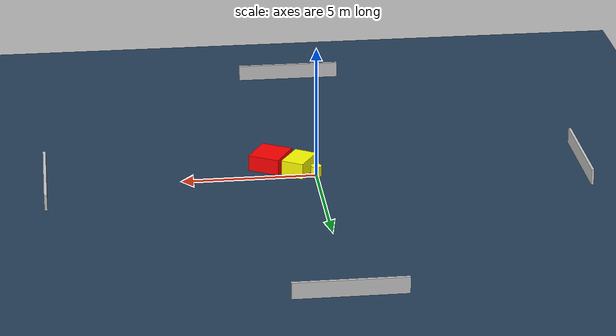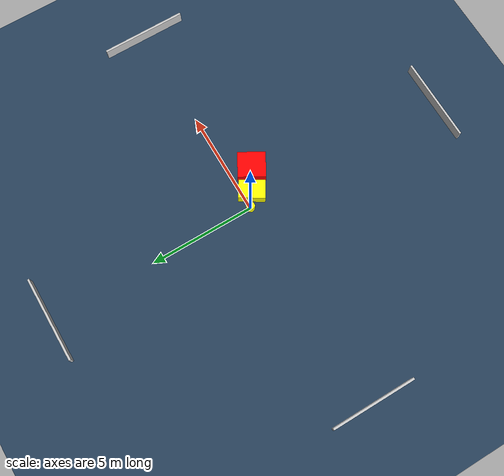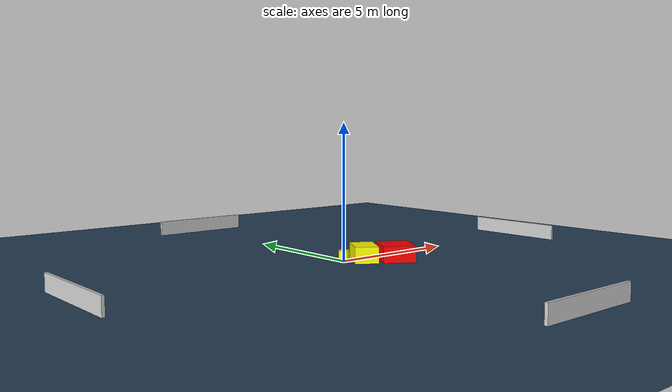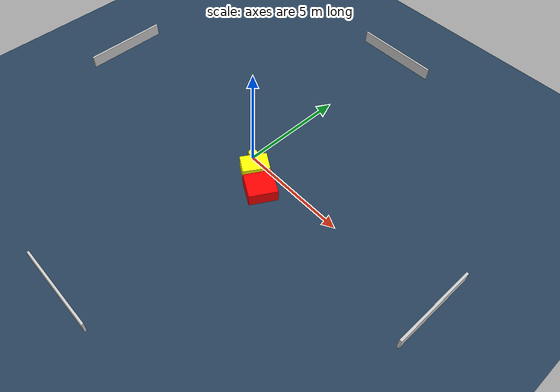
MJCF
<?xml version="1.0" ?>
<mujoco model="generated_environment">
  <option timestep="0.01" integrator="RK4" cone="elliptic"/>
  <default>
    <geom density="1"/>
  </default>
  <asset>
    <texture builtin="gradient" height="3072" name="skybox" rgb1="0.3 0.5 0.7" rgb2="0 0 0" type="skybox" width="512"/>
    <texture builtin="checker" height="300" name="groundplane" rgb1="0.2 0.3 0.4" rgb2="0.1 0.2 0.3" type="2d" width="300"/>
    <material name="groundplane" reflectance="0.2" texrepeat="5 5" texture="groundplane"/>
  </asset>
  <worldbody>
    <light dir="0 0 -1" directional="true" pos="0 0 1.5"/>
    <geom condim="3" friction="0.5 0.005 0.001" material="groundplane" name="floor" pos="0 0 0" size="0 0 0.05" type="plane"/>
    <body name="walls">
      <geom name="wall_1" condim="4" pos="-10.0 0.0 0.3" rgba="0.800000011920929 0.800000011920929 0.800000011920929 1.0" size="0.05 2.0 0.3" type="box"/>
      <geom name="wall_2" condim="4" pos="10.0 0.0 0.3" rgba="0.800000011920929 0.800000011920929 0.800000011920929 1.0" size="0.05 2.0 0.3" type="box"/>
      <geom name="wall_3" condim="4" pos="0.0 -10.0 0.3" rgba="0.800000011920929 0.800000011920929 0.800000011920929 1.0" size="2.0 0.05 0.3" type="box"/>
      <geom name="wall_4" condim="4" pos="0.0 10.0 0.3" rgba="0.800000011920929 0.800000011920929 0.800000011920929 1.0" size="2.0 0.05 0.3" type="box"/>
    </body>
    <body name="robot">
      <joint name="joint_x" type="slide" pos="0 0 0" axis="1 0 0"/>
      <joint name="joint_y" type="slide" pos="0 0 0" axis="0 1 0"/>
      <geom name="robot" type="cylinder" pos="0.0 0.0 0.2" size="0.2 0.2 0.0" mass="5.0" friction="1.0 0.005 0.0001" condim="4" rgba="1.0 1.0 0.0 1.0"/>
    </body>
    <body name="obstacle_1_movable">
      <geom name="obstacle_1_movable" condim="4" pos="0.5936806842151219 -0.42875901564018454 0.3" euler="0 0 58.386437749562404" friction="0.0 0.005 0.001" rgba="1.0 1.0 0.0 1.0" size="0.6131290849978082 0.4302727788173801 0.3" type="box" mass="0.1"/>
      <joint type="free"/>
    </body>
    <body name="obstacle_2_static">
      <geom name="obstacle_2_static" condim="4" pos="1.6041514227601816 -1.0125225968575813 0.3" euler="0 0 150.56900573952055" friction="0.0 0.005 0.001" rgba="1.0 0.0 0.0 1.0" size="0.5986215950973475 0.6471711191705328 0.3" type="box"/>
    </body>
  </worldbody>
  <actuator>
    <motor name="actuator_x" joint="joint_x" gear="1" ctrlrange="-1 1"/>
    <motor name="actuator_y" joint="joint_y" gear="1" ctrlrange="-1 1"/>
  </actuator>
</mujoco>
